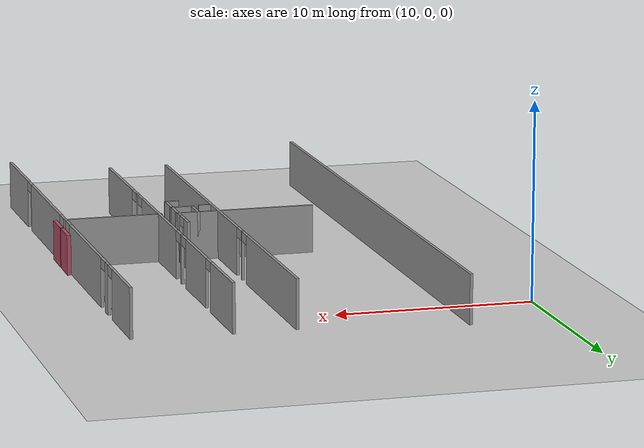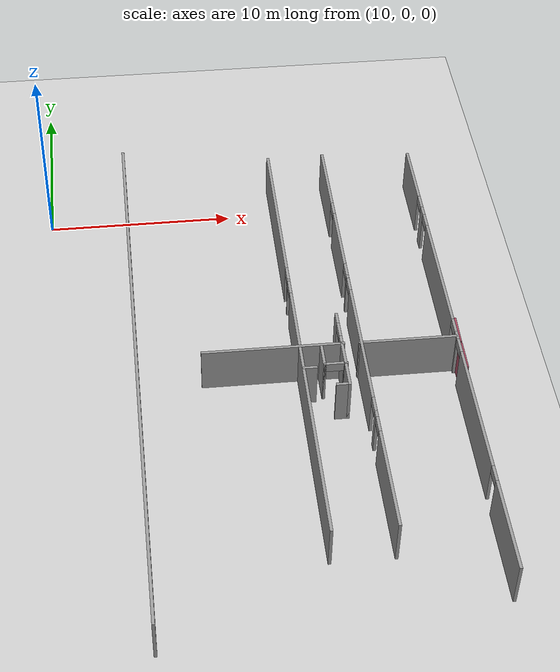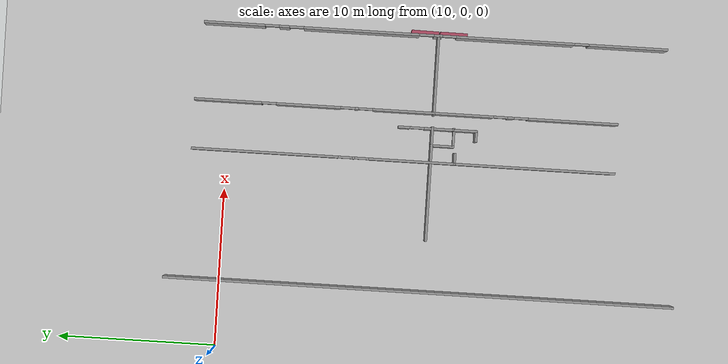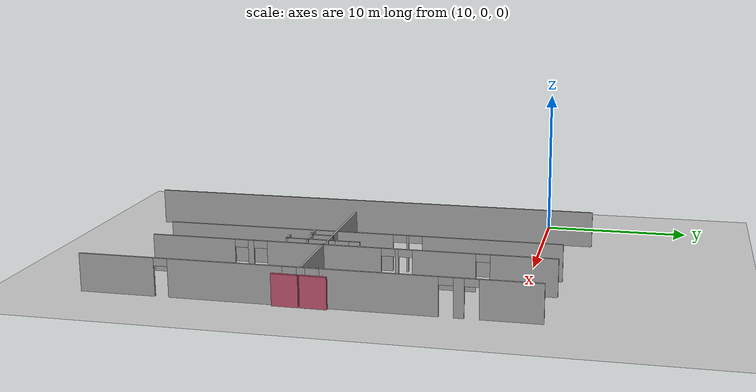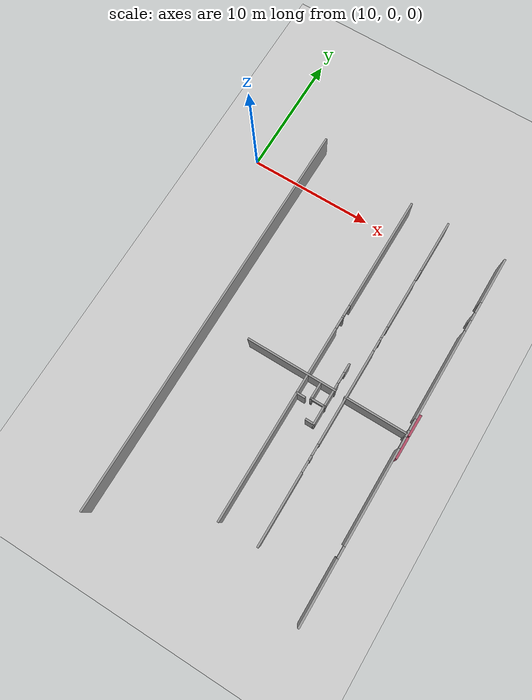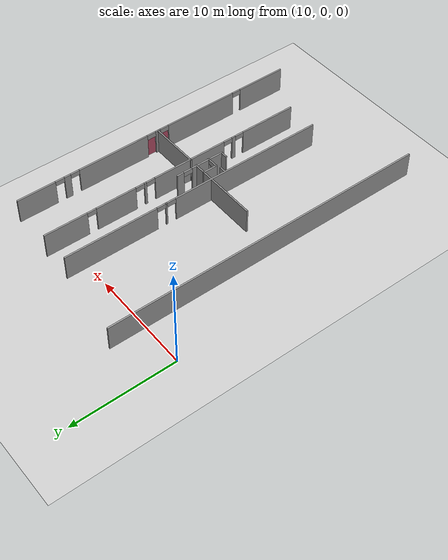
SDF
<sdf version="1.6">
 <world name="default">
  <model name="ground_plane">
   <static>1</static>
   <link name="link">
    <collision name="collision">
     <geometry><plane><normal>0 0 1</normal><size>100 100</size></plane></geometry>
     <surface><friction><ode><mu>100</mu><mu2>50</mu2></ode></friction></surface>
    </collision>
    <visual name="visual">
     <cast_shadows>0</cast_shadows>
     <geometry><plane><normal>0 0 1</normal><size>100 100</size></plane></geometry>
     <material>
      <script><uri>file://media/materials/scripts/gazebo.material</uri><name>Gazebo/Grey</name></script>
     </material>
    </visual>
   </link>
  </model>
  <model name="fin_se1f1.sdf">
   <pose>1.8125 -2.2901 0 0 -0 0</pose>
   <link name="Wall_10">
    <pose>28.6504 -10.5254 0 0 -0 1.5708</pose>
    <visual name="Wall_10_Visual_0">
     <pose>-12.1333 0 1.25 0 -0 0</pose>
     <geometry><box><size>4.98346 0.15 2.5</size></box></geometry>
     <material>
      <script><uri>file://media/materials/scripts/gazebo.material</uri><name>Gazebo/Grey</name></script>
      <ambient>1 1 1 1</ambient>
     </material>
     <meta><layer>0</layer></meta>
    </visual>
    <collision name="Wall_10_Collision_0">
     <geometry><box><size>4.98346 0.15 2.5</size></box></geometry>
     <pose>-12.1333 0 1.25 0 -0 0</pose>
    </collision>
    <visual name="Wall_10_Visual_1">
     <pose>-5.01797 0 1.25 0 -0 0</pose>
     <geometry><box><size>7.44713 0.15 2.5</size></box></geometry>
     <material>
      <script><uri>file://media/materials/scripts/gazebo.material</uri><name>Gazebo/Grey</name></script>
      <ambient>1 1 1 1</ambient>
     </material>
     <meta><layer>0</layer></meta>
    </visual>
    <collision name="Wall_10_Collision_1">
     <geometry><box><size>7.44713 0.15 2.5</size></box></geometry>
     <pose>-5.01797 0 1.25 0 -0 0</pose>
    </collision>
    <visual name="Wall_10_Visual_2">
     <pose>-0.130374 0 1.25 0 -0 0</pose>
     <geometry><box><size>0.528064 0.15 2.5</size></box></geometry>
     <material>
      <script><uri>file://media/materials/scripts/gazebo.material</uri><name>Gazebo/Grey</name></script>
      <ambient>1 1 1 1</ambient>
     </material>
     <meta><layer>0</layer></meta>
    </visual>
    <collision name="Wall_10_Collision_2">
     <geometry><box><size>0.528064 0.15 2.5</size></box></geometry>
     <pose>-0.130374 0 1.25 0 -0 0</pose>
    </collision>
    <visual name="Wall_10_Visual_3">
     <pose>4.68683 0 1.25 0 -0 0</pose>
     <geometry><box><size>7.30634 0.15 2.5</size></box></geometry>
     <material>
      <script><uri>file://media/materials/scripts/gazebo.material</uri><name>Gazebo/Grey</name></script>
      <ambient>1 1 1 1</ambient>
     </material>
     <meta><layer>0</layer></meta>
    </visual>
    <collision name="Wall_10_Collision_3">
     <geometry><box><size>7.30634 0.15 2.5</size></box></geometry>
     <pose>4.68683 0 1.25 0 -0 0</pose>
    </collision>
    <visual name="Wall_10_Visual_4">
     <pose>9.56437 0 1.25 0 -0 0</pose>
     <geometry><box><size>0.648745 0.15 2.5</size></box></geometry>
     <material>
      <script><uri>file://media/materials/scripts/gazebo.material</uri><name>Gazebo/Grey</name></script>
      <ambient>1 1 1 1</ambient>
     </material>
     <meta><layer>0</layer></meta>
    </visual>
    <collision name="Wall_10_Collision_4">
     <geometry><box><size>0.648745 0.15 2.5</size></box></geometry>
     <pose>9.56437 0 1.25 0 -0 0</pose>
    </collision>
    <visual name="Wall_10_Visual_5">
     <pose>12.7069 0 1.25 0 -0 0</pose>
     <geometry><box><size>3.83626 0.15 2.5</size></box></geometry>
     <material>
      <script><uri>file://media/materials/scripts/gazebo.material</uri><name>Gazebo/Grey</name></script>
      <ambient>1 1 1 1</ambient>
     </material>
     <meta><layer>0</layer></meta>
    </visual>
    <collision name="Wall_10_Collision_5">
     <geometry><box><size>3.83626 0.15 2.5</size></box></geometry>
     <pose>12.7069 0 1.25 0 -0 0</pose>
    </collision>
    <visual name="Wall_10_Visual_6">
     <pose>-9.19154 0 2.25 0 -0 0</pose>
     <geometry><box><size>0.9 0.15 0.5</size></box></geometry>
     <material>
      <script><uri>file://media/materials/scripts/gazebo.material</uri><name>Gazebo/Grey</name></script>
      <ambient>1 1 1 1</ambient>
     </material>
     <meta><layer>0</layer></meta>
    </visual>
    <collision name="Wall_10_Collision_6">
     <geometry><box><size>0.9 0.15 0.5</size></box></geometry>
     <pose>-9.19154 0 2.25 0 -0 0</pose>
    </collision>
    <visual name="Wall_10_Visual_7">
     <pose>-0.844406 0 2.25 0 -0 0</pose>
     <geometry><box><size>0.9 0.15 0.5</size></box></geometry>
     <material>
      <script><uri>file://media/materials/scripts/gazebo.material</uri><name>Gazebo/Grey</name></script>
      <ambient>1 1 1 1</ambient>
     </material>
     <meta><layer>0</layer></meta>
    </visual>
    <collision name="Wall_10_Collision_7">
     <geometry><box><size>0.9 0.15 0.5</size></box></geometry>
     <pose>-0.844406 0 2.25 0 -0 0</pose>
    </collision>
    <visual name="Wall_10_Visual_8">
     <pose>0.583658 0 2.25 0 -0 0</pose>
     <geometry><box><size>0.9 0.15 0.5</size></box></geometry>
     <material>
      <script><uri>file://media/materials/scripts/gazebo.material</uri><name>Gazebo/Grey</name></script>
      <ambient>1 1 1 1</ambient>
     </material>
     <meta><layer>0</layer></meta>
    </visual>
    <collision name="Wall_10_Collision_8">
     <geometry><box><size>0.9 0.15 0.5</size></box></geometry>
     <pose>0.583658 0 2.25 0 -0 0</pose>
    </collision>
    <visual name="Wall_10_Visual_9">
     <pose>8.78999 0 2.25 0 -0 0</pose>
     <geometry><box><size>0.9 0.15 0.5</size></box></geometry>
     <material>
      <script><uri>file://media/materials/scripts/gazebo.material</uri><name>Gazebo/Grey</name></script>
      <ambient>1 1 1 1</ambient>
     </material>
     <meta><layer>0</layer></meta>
    </visual>
    <collision name="Wall_10_Collision_9">
     <geometry><box><size>0.9 0.15 0.5</size></box></geometry>
     <pose>8.78999 0 2.25 0 -0 0</pose>
    </collision>
    <visual name="Wall_10_Visual_10">
     <pose>10.3387 0 2.25 0 -0 0</pose>
     <geometry><box><size>0.9 0.15 0.5</size></box></geometry>
     <material>
      <script><uri>file://media/materials/scripts/gazebo.material</uri><name>Gazebo/Grey</name></script>
      <ambient>1 1 1 1</ambient>
     </material>
     <meta><layer>0</layer></meta>
    </visual>
    <collision name="Wall_10_Collision_10">
     <geometry><box><size>0.9 0.15 0.5</size></box></geometry>
     <pose>10.3387 0 2.25 0 -0 0</pose>
    </collision>
   </link>
   <link name="Wall_167">
    <pose>20.659 -8.93568 0 0 0 -1.5708</pose>
    <visual name="Wall_167_Visual_0">
     <pose>-8.74263 0 1.25 0 -0 0</pose>
     <geometry><box><size>9.26475 0.15 2.5</size></box></geometry>
     <material>
      <script><uri>file://media/materials/scripts/gazebo.material</uri><name>Gazebo/Grey</name></script>
      <ambient>1 1 1 1</ambient>
     </material>
     <meta><layer>0</layer></meta>
    </visual>
    <collision name="Wall_167_Collision_0">
     <geometry><box><size>9.26475 0.15 2.5</size></box></geometry>
     <pose>-8.74263 0 1.25 0 -0 0</pose>
    </collision>
    <visual name="Wall_167_Visual_1">
     <pose>-3.1373 0 1.25 0 -0 0</pose>
     <geometry><box><size>0.145906 0.15 2.5</size></box></geometry>
     <material>
      <script><uri>file://media/materials/scripts/gazebo.material</uri><name>Gazebo/Grey</name></script>
      <ambient>1 1 1 1</ambient>
     </material>
     <meta><layer>0</layer></meta>
    </visual>
    <collision name="Wall_167_Collision_1">
     <geometry><box><size>0.145906 0.15 2.5</size></box></geometry>
     <pose>-3.1373 0 1.25 0 -0 0</pose>
    </collision>
    <visual name="Wall_167_Visual_2">
     <pose>5.60533 0 1.25 0 -0 0</pose>
     <geometry><box><size>15.5393 0.15 2.5</size></box></geometry>
     <material>
      <script><uri>file://media/materials/scripts/gazebo.material</uri><name>Gazebo/Grey</name></script>
      <ambient>1 1 1 1</ambient>
     </material>
     <meta><layer>0</layer></meta>
    </visual>
    <collision name="Wall_167_Collision_2">
     <geometry><box><size>15.5393 0.15 2.5</size></box></geometry>
     <pose>5.60533 0 1.25 0 -0 0</pose>
    </collision>
    <visual name="Wall_167_Visual_3">
     <pose>-3.66025 0 2.25 0 -0 0</pose>
     <geometry><box><size>0.9 0.15 0.5</size></box></geometry>
     <material>
      <script><uri>file://media/materials/scripts/gazebo.material</uri><name>Gazebo/Grey</name></script>
      <ambient>1 1 1 1</ambient>
     </material>
     <meta><layer>0</layer></meta>
    </visual>
    <collision name="Wall_167_Collision_3">
     <geometry><box><size>0.9 0.15 0.5</size></box></geometry>
     <pose>-3.66025 0 2.25 0 -0 0</pose>
    </collision>
    <visual name="Wall_167_Visual_4">
     <pose>-2.61435 0 2.25 0 -0 0</pose>
     <geometry><box><size>0.9 0.15 0.5</size></box></geometry>
     <material>
      <script><uri>file://media/materials/scripts/gazebo.material</uri><name>Gazebo/Grey</name></script>
      <ambient>1 1 1 1</ambient>
     </material>
     <meta><layer>0</layer></meta>
    </visual>
    <collision name="Wall_167_Collision_4">
     <geometry><box><size>0.9 0.15 0.5</size></box></geometry>
     <pose>-2.61435 0 2.25 0 -0 0</pose>
    </collision>
   </link>
   <link name="Wall_169">
    <pose>23.7723 -8.93568 0 0 0 -1.5708</pose>
    <visual name="Wall_169_Visual_0">
     <pose>-11.2367 0 1.25 0 -0 0</pose>
     <geometry><box><size>4.27658 0.15 2.5</size></box></geometry>
     <material>
      <script><uri>file://media/materials/scripts/gazebo.material</uri><name>Gazebo/Grey</name></script>
      <ambient>1 1 1 1</ambient>
     </material>
     <meta><layer>0</layer></meta>
    </visual>
    <collision name="Wall_169_Collision_0">
     <geometry><box><size>4.27658 0.15 2.5</size></box></geometry>
     <pose>-11.2367 0 1.25 0 -0 0</pose>
    </collision>
    <visual name="Wall_169_Visual_1">
     <pose>-6.16439 0 1.25 0 -0 0</pose>
     <geometry><box><size>4.06805 0.15 2.5</size></box></geometry>
     <material>
      <script><uri>file://media/materials/scripts/gazebo.material</uri><name>Gazebo/Grey</name></script>
      <ambient>1 1 1 1</ambient>
     </material>
     <meta><layer>0</layer></meta>
    </visual>
    <collision name="Wall_169_Collision_1">
     <geometry><box><size>4.06805 0.15 2.5</size></box></geometry>
     <pose>-6.16439 0 1.25 0 -0 0</pose>
    </collision>
    <visual name="Wall_169_Visual_2">
     <pose>-3.11719 0 1.25 0 -0 0</pose>
     <geometry><box><size>0.22636 0.15 2.5</size></box></geometry>
     <material>
      <script><uri>file://media/materials/scripts/gazebo.material</uri><name>Gazebo/Grey</name></script>
      <ambient>1 1 1 1</ambient>
     </material>
     <meta><layer>0</layer></meta>
    </visual>
    <collision name="Wall_169_Collision_2">
     <geometry><box><size>0.22636 0.15 2.5</size></box></geometry>
     <pose>-3.11719 0 1.25 0 -0 0</pose>
    </collision>
    <visual name="Wall_169_Visual_3">
     <pose>1.70001 0 1.25 0 -0 0</pose>
     <geometry><box><size>7.60804 0.15 2.5</size></box></geometry>
     <material>
      <script><uri>file://media/materials/scripts/gazebo.material</uri><name>Gazebo/Grey</name></script>
      <ambient>1 1 1 1</ambient>
     </material>
     <meta><layer>0</layer></meta>
    </visual>
    <collision name="Wall_169_Collision_3">
     <geometry><box><size>7.60804 0.15 2.5</size></box></geometry>
     <pose>1.70001 0 1.25 0 -0 0</pose>
    </collision>
    <visual name="Wall_169_Visual_4">
     <pose>6.59767 0 1.25 0 -0 0</pose>
     <geometry><box><size>0.387269 0.15 2.5</size></box></geometry>
     <material>
      <script><uri>file://media/materials/scripts/gazebo.material</uri><name>Gazebo/Grey</name></script>
      <ambient>1 1 1 1</ambient>
     </material>
     <meta><layer>0</layer></meta>
    </visual>
    <collision name="Wall_169_Collision_4">
     <geometry><box><size>0.387269 0.15 2.5</size></box></geometry>
     <pose>6.59767 0 1.25 0 -0 0</pose>
    </collision>
    <visual name="Wall_169_Visual_5">
     <pose>10.5332 0 1.25 0 -0 0</pose>
     <geometry><box><size>5.6837 0.15 2.5</size></box></geometry>
     <material>
      <script><uri>file://media/materials/scripts/gazebo.material</uri><name>Gazebo/Grey</name></script>
      <ambient>1 1 1 1</ambient>
     </material>
     <meta><layer>0</layer></meta>
    </visual>
    <collision name="Wall_169_Collision_5">
     <geometry><box><size>5.6837 0.15 2.5</size></box></geometry>
     <pose>10.5332 0 1.25 0 -0 0</pose>
    </collision>
    <visual name="Wall_169_Visual_6">
     <pose>-8.64842 0 2.25 0 -0 0</pose>
     <geometry><box><size>0.9 0.15 0.5</size></box></geometry>
     <material>
      <script><uri>file://media/materials/scripts/gazebo.material</uri><name>Gazebo/Grey</name></script>
      <ambient>1 1 1 1</ambient>
     </material>
     <meta><layer>0</layer></meta>
    </visual>
    <collision name="Wall_169_Collision_6">
     <geometry><box><size>0.9 0.15 0.5</size></box></geometry>
     <pose>-8.64842 0 2.25 0 -0 0</pose>
    </collision>
    <visual name="Wall_169_Visual_7">
     <pose>-3.68037 0 2.25 0 -0 0</pose>
     <geometry><box><size>0.9 0.15 0.5</size></box></geometry>
     <material>
      <script><uri>file://media/materials/scripts/gazebo.material</uri><name>Gazebo/Grey</name></script>
      <ambient>1 1 1 1</ambient>
     </material>
     <meta><layer>0</layer></meta>
    </visual>
    <collision name="Wall_169_Collision_7">
     <geometry><box><size>0.9 0.15 0.5</size></box></geometry>
     <pose>-3.68037 0 2.25 0 -0 0</pose>
    </collision>
    <visual name="Wall_169_Visual_8">
     <pose>-2.55401 0 2.25 0 -0 0</pose>
     <geometry><box><size>0.9 0.15 0.5</size></box></geometry>
     <material>
      <script><uri>file://media/materials/scripts/gazebo.material</uri><name>Gazebo/Grey</name></script>
      <ambient>1 1 1 1</ambient>
     </material>
     <meta><layer>0</layer></meta>
    </visual>
    <collision name="Wall_169_Collision_8">
     <geometry><box><size>0.9 0.15 0.5</size></box></geometry>
     <pose>-2.55401 0 2.25 0 -0 0</pose>
    </collision>
    <visual name="Wall_169_Visual_9">
     <pose>5.95404 0 2.25 0 -0 0</pose>
     <geometry><box><size>0.9 0.15 0.5</size></box></geometry>
     <material>
      <script><uri>file://media/materials/scripts/gazebo.material</uri><name>Gazebo/Grey</name></script>
      <ambient>1 1 1 1</ambient>
     </material>
     <meta><layer>0</layer></meta>
    </visual>
    <collision name="Wall_169_Collision_9">
     <geometry><box><size>0.9 0.15 0.5</size></box></geometry>
     <pose>5.95404 0 2.25 0 -0 0</pose>
    </collision>
    <visual name="Wall_169_Visual_10">
     <pose>7.2413 0 2.25 0 -0 0</pose>
     <geometry><box><size>0.9 0.15 0.5</size></box></geometry>
     <material>
      <script><uri>file://media/materials/scripts/gazebo.material</uri><name>Gazebo/Grey</name></script>
      <ambient>1 1 1 1</ambient>
     </material>
     <meta><layer>0</layer></meta>
    </visual>
    <collision name="Wall_169_Collision_10">
     <geometry><box><size>0.9 0.15 0.5</size></box></geometry>
     <pose>7.2413 0 2.25 0 -0 0</pose>
    </collision>
   </link>
   <link name="Wall_202">
    <pose>22.786 -11.0033 0 0 0 -1.5708</pose>
    <visual name="Wall_202_Visual_0">
     <pose>-2.13652 0 1.25 0 -0 0</pose>
     <geometry><box><size>0.72696 0.15 2.5</size></box></geometry>
     <material>
      <script><uri>file://media/materials/scripts/gazebo.material</uri><name>Gazebo/Grey</name></script>
      <ambient>1 1 1 1</ambient>
     </material>
     <meta><layer>0</layer></meta>
    </visual>
    <collision name="Wall_202_Collision_0">
     <geometry><box><size>0.72696 0.15 2.5</size></box></geometry>
     <pose>-2.13652 0 1.25 0 -0 0</pose>
    </collision>
    <visual name="Wall_202_Visual_1">
     <pose>0.81348 0 1.25 0 -0 0</pose>
     <geometry><box><size>3.37304 0.15 2.5</size></box></geometry>
     <material>
      <script><uri>file://media/materials/scripts/gazebo.material</uri><name>Gazebo/Grey</name></script>
      <ambient>1 1 1 1</ambient>
     </material>
     <meta><layer>0</layer></meta>
    </visual>
    <collision name="Wall_202_Collision_1">
     <geometry><box><size>3.37304 0.15 2.5</size></box></geometry>
     <pose>0.81348 0 1.25 0 -0 0</pose>
    </collision>
    <visual name="Wall_202_Visual_2">
     <pose>-1.32304 0 2.25 0 -0 0</pose>
     <geometry><box><size>0.9 0.15 0.5</size></box></geometry>
     <material>
      <script><uri>file://media/materials/scripts/gazebo.material</uri><name>Gazebo/Grey</name></script>
      <ambient>1 1 1 1</ambient>
     </material>
     <meta><layer>0</layer></meta>
    </visual>
    <collision name="Wall_202_Collision_2">
     <geometry><box><size>0.9 0.15 0.5</size></box></geometry>
     <pose>-1.32304 0 2.25 0 -0 0</pose>
    </collision>
   </link>
   <link name="Wall_203">
    <collision name="Wall_203_Collision">
     <geometry><box><size>0.75 0.15 2.5</size></box></geometry>
     <pose>0 0 1.25 0 -0 0</pose>
    </collision>
    <visual name="Wall_203_Visual">
     <pose>0 0 1.25 0 -0 0</pose>
     <geometry><box><size>0.75 0.15 2.5</size></box></geometry>
     <material>
      <script><uri>file://media/materials/scripts/gazebo.material</uri><name>Gazebo/Grey</name></script>
      <ambient>1 1 1 1</ambient>
     </material>
     <meta><layer>0</layer></meta>
    </visual>
    <pose>22.486 -13.4283 0 0 -0 3.14159</pose>
   </link>
   <link name="Wall_205">
    <collision name="Wall_205_Collision">
     <geometry><box><size>0.75 0.15 2.5</size></box></geometry>
     <pose>0 0 1.25 0 -0 0</pose>
    </collision>
    <visual name="Wall_205_Visual">
     <pose>0 0 1.25 0 -0 0</pose>
     <geometry><box><size>0.75 0.15 2.5</size></box></geometry>
     <material>
      <script><uri>file://media/materials/scripts/gazebo.material</uri><name>Gazebo/Grey</name></script>
      <ambient>1 1 1 1</ambient>
     </material>
     <meta><layer>0</layer></meta>
    </visual>
    <pose>20.9784 -12.1724 0 0 -0 0</pose>
   </link>
   <link name="Wall_207">
    <collision name="Wall_207_Collision">
     <geometry><box><size>1.5 0.15 2.5</size></box></geometry>
     <pose>0 0 1.25 0 -0 0</pose>
    </collision>
    <visual name="Wall_207_Visual">
     <pose>0 0 1.25 0 -0 0</pose>
     <geometry><box><size>1.5 0.15 2.5</size></box></geometry>
     <material>
      <script><uri>file://media/materials/scripts/gazebo.material</uri><name>Gazebo/Grey</name></script>
      <ambient>1 1 1 1</ambient>
     </material>
     <meta><layer>0</layer></meta>
    </visual>
    <pose>21.7337 -11.3347 0 0 0 -1.5708</pose>
   </link>
   <link name="Wall_208">
    <pose>22.2837 -12.0097 0 0 -0 0</pose>
    <visual name="Wall_208_Visual_0">
     <pose>-0.556272 0 1.25 0 -0 0</pose>
     <geometry><box><size>0.137456 0.15 2.5</size></box></geometry>
     <material>
      <script><uri>file://media/materials/scripts/gazebo.material</uri><name>Gazebo/Grey</name></script>
      <ambient>1 1 1 1</ambient>
     </material>
     <meta><layer>0</layer></meta>
    </visual>
    <collision name="Wall_208_Collision_0">
     <geometry><box><size>0.137456 0.15 2.5</size></box></geometry>
     <pose>-0.556272 0 1.25 0 -0 0</pose>
    </collision>
    <visual name="Wall_208_Visual_1">
     <pose>0.518728 0 1.25 0 -0 0</pose>
     <geometry><box><size>0.212544 0.15 2.5</size></box></geometry>
     <material>
      <script><uri>file://media/materials/scripts/gazebo.material</uri><name>Gazebo/Grey</name></script>
      <ambient>1 1 1 1</ambient>
     </material>
     <meta><layer>0</layer></meta>
    </visual>
    <collision name="Wall_208_Collision_1">
     <geometry><box><size>0.212544 0.15 2.5</size></box></geometry>
     <pose>0.518728 0 1.25 0 -0 0</pose>
    </collision>
    <visual name="Wall_208_Visual_2">
     <pose>-0.037544 0 2.25 0 -0 0</pose>
     <geometry><box><size>0.9 0.15 0.5</size></box></geometry>
     <material>
      <script><uri>file://media/materials/scripts/gazebo.material</uri><name>Gazebo/Grey</name></script>
      <ambient>1 1 1 1</ambient>
     </material>
     <meta><layer>0</layer></meta>
    </visual>
    <collision name="Wall_208_Collision_2">
     <geometry><box><size>0.9 0.15 0.5</size></box></geometry>
     <pose>-0.037544 0 2.25 0 -0 0</pose>
    </collision>
   </link>
   <link name="Wall_210">
    <collision name="Wall_210_Collision">
     <geometry><box><size>7.25 0.15 2.5</size></box></geometry>
     <pose>0 0 1.25 0 -0 0</pose>
    </collision>
    <visual name="Wall_210_Visual">
     <pose>0 0 1.25 0 -0 0</pose>
     <geometry><box><size>7.25 0.15 2.5</size></box></geometry>
     <material>
      <script><uri>file://media/materials/scripts/gazebo.material</uri><name>Gazebo/Grey</name></script>
      <ambient>1 1 1 1</ambient>
     </material>
     <meta><layer>0</layer></meta>
    </visual>
    <pose>19.3094 -10.6597 0 0 -0 3.14159</pose>
   </link>
   <link name="Wall_214">
    <collision name="Wall_214_Collision">
     <geometry><box><size>5 0.15 2.5</size></box></geometry>
     <pose>0 0 1.25 0 -0 0</pose>
    </collision>
    <visual name="Wall_214_Visual">
     <pose>0 0 1.25 0 -0 0</pose>
     <geometry><box><size>5 0.15 2.5</size></box></geometry>
     <material>
      <script><uri>file://media/materials/scripts/gazebo.material</uri><name>Gazebo/Grey</name></script>
      <ambient>1 1 1 1</ambient>
     </material>
     <meta><layer>0</layer></meta>
    </visual>
    <pose>26.1362 -10.6951 0 0 -0 0</pose>
   </link>
   <link name="Wall_6">
    <collision name="Wall_6_Collision">
     <geometry><box><size>32.25 0.15 2.5</size></box></geometry>
     <pose>0 0 1.25 0 -0 0</pose>
    </collision>
    <visual name="Wall_6_Visual">
     <pose>0 0 1.25 0 -0 0</pose>
     <geometry><box><size>32.25 0.15 2.5</size></box></geometry>
     <material>
      <script><uri>file://media/materials/scripts/gazebo.material</uri><name>Gazebo/Grey</name></script>
      <ambient>1 1 1 1</ambient>
     </material>
     <meta><layer>0</layer></meta>
    </visual>
    <pose>12.4504 -10.3754 0 0 0 -1.5708</pose>
   </link>
   <static>1</static>
  </model>
  <model name="doorOutside_clone_8_clone_4">
   <link name="link">
    <pose>0.155539 -0.366282 0.216958 0 -0 0</pose>
    <inertial>
     <mass>2.13199</mass>
     <inertia>
      <ixx>0.452656</ixx>
      <ixy>0</ixy>
      <ixz>0</ixz>
      <iyy>0.796738</iyy>
      <iyz>0</iyz>
      <izz>0.699414</izz>
     </inertia>
    </inertial>
    <visual name="visual">
     <geometry><box><size>1.71368 0.198843 2.05986</size></box></geometry>
     <material>
      <script><name>Gazebo/Grey</name><uri>file://media/materials/scripts/gazebo.material</uri></script>
      <ambient>0.7 0.3 0.4 1</ambient>
      <diffuse>0.7 0.7 0.7 1</diffuse>
      <specular>0.01 0.01 0.01 1</specular>
      <emissive>0 0 0 1</emissive>
      <shader type="vertex"><normal_map>__default__</normal_map></shader>
      <lighting>0</lighting>
     </material>
    </visual>
    <collision name="collision">
     <geometry><box><size>1.71368 0.198843 2.05986</size></box></geometry>
     <surface>
      <friction>
       <ode><mu>1</mu><mu2>1</mu2><fdir1>0 0 0</fdir1><slip1>0</slip1><slip2>0</slip2></ode>
       <torsional>
        <coefficient>1</coefficient>
        <patch_radius>0</patch_radius>
        <surface_radius>0</surface_radius>
        <use_patch_radius>1</use_patch_radius>
        <ode><slip>0</slip></ode>
       </torsional>
      </friction>
      <bounce><restitution_coefficient>0</restitution_coefficient><threshold>1e+06</threshold></bounce>
      <contact>
       <collide_without_contact>0</collide_without_contact>
       <collide_without_contact_bitmask>1</collide_without_contact_bitmask>
       <collide_bitmask>1</collide_bitmask>
       <ode>
        <soft_cfm>0</soft_cfm>
        <soft_erp>0.2</soft_erp>
        <kp>1e+13</kp>
        <kd>1</kd>
        <max_vel>0.01</max_vel>
        <min_depth>0</min_depth>
       </ode>
       <bullet>
        <split_impulse>1</split_impulse>
        <split_impulse_penetration_threshold>-0.01</split_impulse_penetration_threshold>
        <soft_cfm>0</soft_cfm>
        <soft_erp>0.2</soft_erp>
        <kp>1e+13</kp>
        <kd>1</kd>
       </bullet>
      </contact>
     </surface>
    </collision>
   </link>
   <static>1</static>
   <pose>30.2864 -12.2879 0.812972 0 -0 1.55383</pose>
  </model>
  <model name="doorOutside_clone_8_clone_5">
   <link name="link">
    <pose>0.155539 -0.366282 0.216958 0 -0 0</pose>
    <inertial>
     <mass>2.13199</mass>
     <inertia>
      <ixx>0.452656</ixx>
      <ixy>0</ixy>
      <ixz>0</ixz>
      <iyy>0.796738</iyy>
      <iyz>0</iyz>
      <izz>0.699414</izz>
     </inertia>
    </inertial>
    <visual name="visual">
     <geometry><box><size>1.71368 0.198843 2.05986</size></box></geometry>
     <material>
      <script><name>Gazebo/Grey</name><uri>file://media/materials/scripts/gazebo.material</uri></script>
      <ambient>0.7 0.3 0.4 1</ambient>
      <diffuse>0.7 0.7 0.7 1</diffuse>
      <specular>0.01 0.01 0.01 1</specular>
      <emissive>0 0 0 1</emissive>
      <shader type="vertex"><normal_map>__default__</normal_map></shader>
      <lighting>0</lighting>
     </material>
    </visual>
    <collision name="collision">
     <geometry><box><size>1.71368 0.198843 2.05986</size></box></geometry>
     <surface>
      <friction>
       <ode><mu>1</mu><mu2>1</mu2><fdir1>0 0 0</fdir1><slip1>0</slip1><slip2>0</slip2></ode>
       <torsional>
        <coefficient>1</coefficient>
        <patch_radius>0</patch_radius>
        <surface_radius>0</surface_radius>
        <use_patch_radius>1</use_patch_radius>
        <ode><slip>0</slip></ode>
       </torsional>
      </friction>
      <bounce><restitution_coefficient>0</restitution_coefficient><threshold>1e+06</threshold></bounce>
      <contact>
       <collide_without_contact>0</collide_without_contact>
       <collide_without_contact_bitmask>1</collide_without_contact_bitmask>
       <collide_bitmask>1</collide_bitmask>
       <ode>
        <soft_cfm>0</soft_cfm>
        <soft_erp>0.2</soft_erp>
        <kp>1e+13</kp>
        <kd>1</kd>
        <max_vel>0.01</max_vel>
        <min_depth>0</min_depth>
       </ode>
       <bullet>
        <split_impulse>1</split_impulse>
        <split_impulse_penetration_threshold>-0.01</split_impulse_penetration_threshold>
        <soft_cfm>0</soft_cfm>
        <soft_erp>0.2</soft_erp>
        <kp>1e+13</kp>
        <kd>1</kd>
       </bullet>
      </contact>
     </surface>
    </collision>
   </link>
   <static>1</static>
   <pose>30.2754 -14.0943 0.812971 -1e-06 -1e-06 1.56462</pose>
  </model>
 </world>
</sdf>
